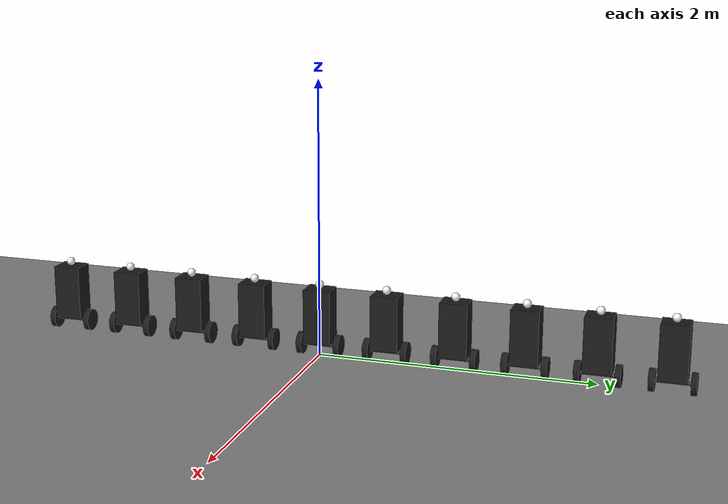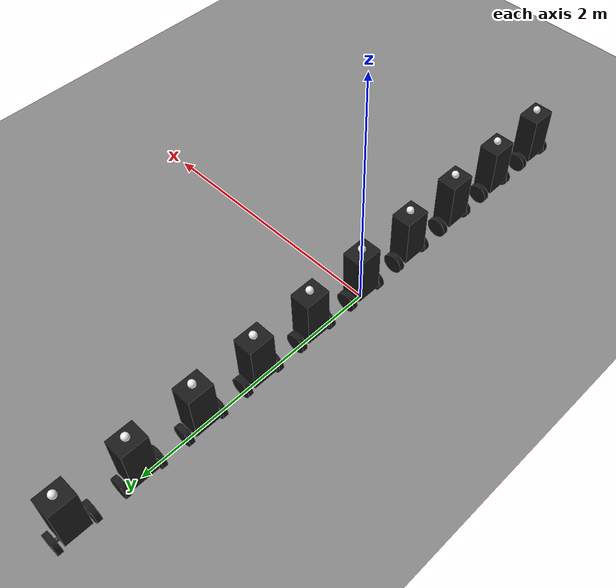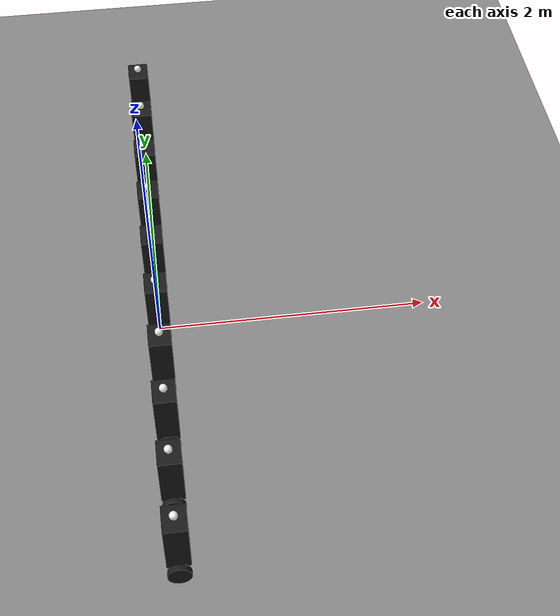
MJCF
<mujoco model="ten_wheeled_robots">
  <compiler angle="degree"/>
  <option timestep="0.005" gravity="0 0 -9.81"/>

  <asset>
    <texture name="grid" type="2d" builtin="checker" width="512" height="512" rgb1="0.1 0.1 0.1" rgb2="0.95 0.95 0.95"/>
    <material name="grid_mat" texture="grid" texrepeat="10 10" reflectance="0.1"/>

    <material name="matte_black" rgba="0.1 0.1 0.1 1" shininess="0.1"/>
    <material name="dark_grey" rgba="0.25 0.25 0.25 1" shininess="0.3"/>
    <material name="bright_white" rgba="0.95 0.95 0.95 1" shininess="0.8"/>
    <material name="winner_gold" rgba="1.0 0.8 0.0 1" shininess="0.9"/>
  </asset>

  <default>
    <geom friction="1.5 0.005 0.0001" contype="1" conaffinity="1"/>
  </default>

  <worldbody>
    <geom name="floor" type="plane" size="10 10 0.1" material="grid_mat"/>

    <!-- ROBOT 0 (Y = -2.0) -->
    <body name="chassis_0" pos="0 -2.0 0.08">
      <freejoint name="root_0"/>
      <geom name="axle_0" type="cylinder" size="0.015 0.13" zaxis="0 1 0" material="dark_grey" mass="0.1"/>
      <geom name="box_0" type="box" size="0.08 0.10 0.2" mass="1.3" material="matte_black" pos="0 0 0.22"/>
      <geom name="top_0" type="sphere" size="0.03" mass="0.01" material="bright_white" pos="0 0 0.45"/>
      <body name="lw_0" pos="0 0.14 0">
        <joint name="lw_j_0" type="hinge" axis="0 1 0"/>
        <geom type="cylinder" size="0.08 0.02" zaxis="0 1 0" mass="0.15" material="matte_black"/>
      </body>
      <body name="rw_0" pos="0 -0.14 0">
        <joint name="rw_j_0" type="hinge" axis="0 1 0"/>
        <geom type="cylinder" size="0.08 0.02" zaxis="0 1 0" mass="0.15" material="matte_black"/>
      </body>
    </body>

    <!-- ROBOT 1 (Y = -1.5) -->
    <body name="chassis_1" pos="0 -1.5 0.08">
      <freejoint name="root_1"/>
      <geom name="axle_1" type="cylinder" size="0.015 0.13" zaxis="0 1 0" material="dark_grey" mass="0.1"/>
      <geom name="box_1" type="box" size="0.08 0.10 0.2" mass="1.3" material="matte_black" pos="0 0 0.22"/>
      <geom name="top_1" type="sphere" size="0.03" mass="0.01" material="bright_white" pos="0 0 0.45"/>
      <body name="lw_1" pos="0 0.14 0">
        <joint name="lw_j_1" type="hinge" axis="0 1 0"/>
        <geom type="cylinder" size="0.08 0.02" zaxis="0 1 0" mass="0.15" material="matte_black"/>
      </body>
      <body name="rw_1" pos="0 -0.14 0">
        <joint name="rw_j_1" type="hinge" axis="0 1 0"/>
        <geom type="cylinder" size="0.08 0.02" zaxis="0 1 0" mass="0.15" material="matte_black"/>
      </body>
    </body>

    <!-- ROBOT 2 (Y = -1.0) -->
    <body name="chassis_2" pos="0 -1.0 0.08">
      <freejoint name="root_2"/>
      <geom name="axle_2" type="cylinder" size="0.015 0.13" zaxis="0 1 0" material="dark_grey" mass="0.1"/>
      <geom name="box_2" type="box" size="0.08 0.10 0.2" mass="1.3" material="matte_black" pos="0 0 0.22"/>
      <geom name="top_2" type="sphere" size="0.03" mass="0.01" material="bright_white" pos="0 0 0.45"/>
      <body name="lw_2" pos="0 0.14 0">
        <joint name="lw_j_2" type="hinge" axis="0 1 0"/>
        <geom type="cylinder" size="0.08 0.02" zaxis="0 1 0" mass="0.15" material="matte_black"/>
      </body>
      <body name="rw_2" pos="0 -0.14 0">
        <joint name="rw_j_2" type="hinge" axis="0 1 0"/>
        <geom type="cylinder" size="0.08 0.02" zaxis="0 1 0" mass="0.15" material="matte_black"/>
      </body>
    </body>

    <!-- ROBOT 3 (Y = -0.5) -->
    <body name="chassis_3" pos="0 -0.5 0.08">
      <freejoint name="root_3"/>
      <geom name="axle_3" type="cylinder" size="0.015 0.13" zaxis="0 1 0" material="dark_grey" mass="0.1"/>
      <geom name="box_3" type="box" size="0.08 0.10 0.2" mass="1.3" material="matte_black" pos="0 0 0.22"/>
      <geom name="top_3" type="sphere" size="0.03" mass="0.01" material="bright_white" pos="0 0 0.45"/>
      <body name="lw_3" pos="0 0.14 0">
        <joint name="lw_j_3" type="hinge" axis="0 1 0"/>
        <geom type="cylinder" size="0.08 0.02" zaxis="0 1 0" material="matte_black"/>
      </body>
      <body name="rw_3" pos="0 -0.14 0">
        <joint name="rw_j_3" type="hinge" axis="0 1 0"/>
        <geom type="cylinder" size="0.08 0.02" zaxis="0 1 0" material="matte_black"/>
      </body>
    </body>

    <!-- ROBOT 4 (Y = 0.0) -->
    <body name="chassis_4" pos="0 0.0 0.08">
      <freejoint name="root_4"/>
      <geom name="axle_4" type="cylinder" size="0.015 0.13" zaxis="0 1 0" material="dark_grey" mass="0.1"/>
      <geom name="box_4" type="box" size="0.08 0.10 0.2" mass="1.3" material="matte_black" pos="0 0 0.22"/>
      <geom name="top_4" type="sphere" size="0.03" mass="0.01" material="bright_white" pos="0 0 0.45"/>
      <body name="lw_4" pos="0 0.14 0">
        <joint name="lw_j_4" type="hinge" axis="0 1 0"/>
        <geom type="cylinder" size="0.08 0.02" zaxis="0 1 0" material="matte_black"/>
      </body>
      <body name="rw_4" pos="0 -0.14 0">
        <joint name="rw_j_4" type="hinge" axis="0 1 0"/>
        <geom type="cylinder" size="0.08 0.02" zaxis="0 1 0" material="matte_black"/>
      </body>
    </body>

    <!-- ROBOT 5 (Y = 0.5) -->
    <body name="chassis_5" pos="0 0.5 0.08">
      <freejoint name="root_5"/>
      <geom name="axle_5" type="cylinder" size="0.015 0.13" zaxis="0 1 0" material="dark_grey" mass="0.1"/>
      <geom name="box_5" type="box" size="0.08 0.10 0.2" mass="1.3" material="matte_black" pos="0 0 0.22"/>
      <geom name="top_5" type="sphere" size="0.03" mass="0.01" material="bright_white" pos="0 0 0.45"/>
      <body name="lw_5" pos="0 0.14 0">
        <joint name="lw_j_5" type="hinge" axis="0 1 0"/>
        <geom type="cylinder" size="0.08 0.02" zaxis="0 1 0" material="matte_black"/>
      </body>
      <body name="rw_5" pos="0 -0.14 0">
        <joint name="rw_j_5" type="hinge" axis="0 1 0"/>
        <geom type="cylinder" size="0.08 0.02" zaxis="0 1 0" material="matte_black"/>
      </body>
    </body>

    <!-- ROBOT 6 (Y = 1.0) -->
    <body name="chassis_6" pos="0 1.0 0.08">
      <freejoint name="root_6"/>
      <geom name="axle_6" type="cylinder" size="0.015 0.13" zaxis="0 1 0" material="dark_grey" mass="0.1"/>
      <geom name="box_6" type="box" size="0.08 0.10 0.2" mass="1.3" material="matte_black" pos="0 0 0.22"/>
      <geom name="top_6" type="sphere" size="0.03" mass="0.01" material="bright_white" pos="0 0 0.45"/>
      <body name="lw_6" pos="0 0.14 0">
        <joint name="lw_j_6" type="hinge" axis="0 1 0"/>
        <geom type="cylinder" size="0.08 0.02" zaxis="0 1 0" material="matte_black"/>
      </body>
      <body name="rw_6" pos="0 -0.14 0">
        <joint name="rw_j_6" type="hinge" axis="0 1 0"/>
        <geom type="cylinder" size="0.08 0.02" zaxis="0 1 0" material="matte_black"/>
      </body>
    </body>

    <!-- ROBOT 7 (Y = 1.5) -->
    <body name="chassis_7" pos="0 1.5 0.08">
      <freejoint name="root_7"/>
      <geom name="axle_7" type="cylinder" size="0.015 0.13" zaxis="0 1 0" material="dark_grey" mass="0.1"/>
      <geom name="box_7" type="box" size="0.08 0.10 0.2" mass="1.3" material="matte_black" pos="0 0 0.22"/>
      <geom name="top_7" type="sphere" size="0.03" mass="0.01" material="bright_white" pos="0 0 0.45"/>
      <body name="lw_7" pos="0 0.14 0">
        <joint name="lw_j_7" type="hinge" axis="0 1 0"/>
        <geom type="cylinder" size="0.08 0.02" zaxis="0 1 0" material="matte_black"/>
      </body>
      <body name="rw_7" pos="0 -0.14 0">
        <joint name="rw_j_7" type="hinge" axis="0 1 0"/>
        <geom type="cylinder" size="0.08 0.02" zaxis="0 1 0" material="matte_black"/>
      </body>
    </body>

    <!-- ROBOT 8 (Y = 2.0) -->
    <body name="chassis_8" pos="0 2.0 0.08">
      <freejoint name="root_8"/>
      <geom name="axle_8" type="cylinder" size="0.015 0.13" zaxis="0 1 0" material="dark_grey" mass="0.1"/>
      <geom name="box_8" type="box" size="0.08 0.10 0.2" mass="1.3" material="matte_black" pos="0 0 0.22"/>
      <geom name="top_8" type="sphere" size="0.03" mass="0.01" material="bright_white" pos="0 0 0.45"/>
      <body name="lw_8" pos="0 0.14 0">
        <joint name="lw_j_8" type="hinge" axis="0 1 0"/>
        <geom type="cylinder" size="0.08 0.02" zaxis="0 1 0" material="matte_black"/>
      </body>
      <body name="rw_8" pos="0 -0.14 0">
        <joint name="rw_j_8" type="hinge" axis="0 1 0"/>
        <geom type="cylinder" size="0.08 0.02" zaxis="0 1 0" material="matte_black"/>
      </body>
    </body>

    <!-- ROBOT 9 (Y = 2.5) -->
    <body name="chassis_9" pos="0 2.5 0.08">
      <freejoint name="root_9"/>
      <geom name="axle_9" type="cylinder" size="0.015 0.13" zaxis="0 1 0" material="dark_grey" mass="0.1"/>
      <geom name="box_9" type="box" size="0.08 0.10 0.2" mass="1.3" material="matte_black" pos="0 0 0.22"/>
      <geom name="top_9" type="sphere" size="0.03" mass="0.01" material="bright_white" pos="0 0 0.45"/>
      <body name="lw_9" pos="0 0.14 0">
        <joint name="lw_j_9" type="hinge" axis="0 1 0"/>
        <geom type="cylinder" size="0.08 0.02" zaxis="0 1 0" material="matte_black"/>
      </body>
      <body name="rw_9" pos="0 -0.14 0">
        <joint name="rw_j_9" type="hinge" axis="0 1 0"/>
        <geom type="cylinder" size="0.08 0.02" zaxis="0 1 0" material="matte_black"/>
      </body>
    </body>
  </worldbody>

  <actuator>
    <motor joint="lw_j_0" name="lm_0" gear="1" ctrlrange="-10 10"/>
    <motor joint="rw_j_0" name="rm_0" gear="1" ctrlrange="-10 10"/>
    <motor joint="lw_j_1" name="lm_1" gear="1" ctrlrange="-10 10"/>
    <motor joint="rw_j_1" name="rm_1" gear="1" ctrlrange="-10 10"/>
    <motor joint="lw_j_2" name="lm_2" gear="1" ctrlrange="-10 10"/>
    <motor joint="rw_j_2" name="rm_2" gear="1" ctrlrange="-10 10"/>
    <motor joint="lw_j_3" name="lm_3" gear="1" ctrlrange="-10 10"/>
    <motor joint="rw_j_3" name="rm_3" gear="1" ctrlrange="-10 10"/>
    <motor joint="lw_j_4" name="lm_4" gear="1" ctrlrange="-10 10"/>
    <motor joint="rw_j_4" name="rm_4" gear="1" ctrlrange="-10 10"/>
    <motor joint="lw_j_5" name="lm_5" gear="1" ctrlrange="-10 10"/>
    <motor joint="rw_j_5" name="rm_5" gear="1" ctrlrange="-10 10"/>
    <motor joint="lw_j_6" name="lm_6" gear="1" ctrlrange="-10 10"/>
    <motor joint="rw_j_6" name="rm_6" gear="1" ctrlrange="-10 10"/>
    <motor joint="lw_j_7" name="lm_7" gear="1" ctrlrange="-10 10"/>
    <motor joint="rw_j_7" name="rm_7" gear="1" ctrlrange="-10 10"/>
    <motor joint="lw_j_8" name="lm_8" gear="1" ctrlrange="-10 10"/>
    <motor joint="rw_j_8" name="rm_8" gear="1" ctrlrange="-10 10"/>
    <motor joint="lw_j_9" name="lm_9" gear="1" ctrlrange="-10 10"/>
    <motor joint="rw_j_9" name="rm_9" gear="1" ctrlrange="-10 10"/>
  </actuator>
</mujoco>
